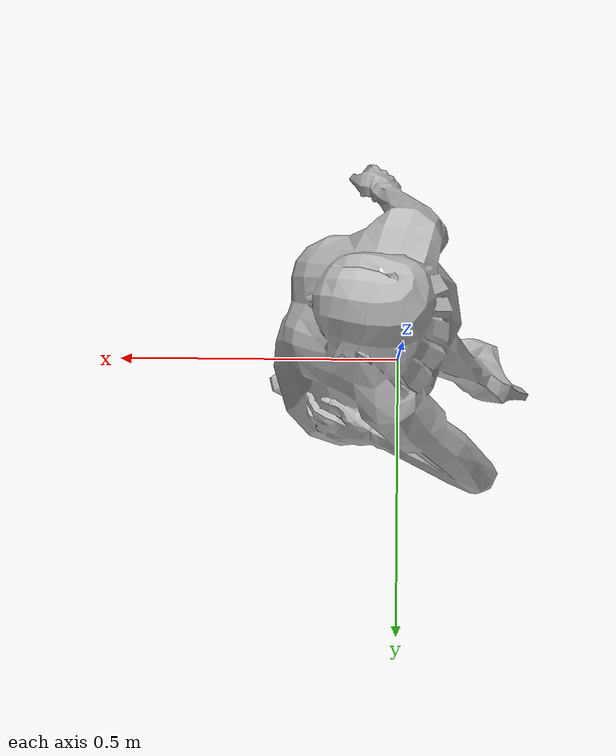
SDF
<?xml version='1.0'?>
    <sdf version='1.4'>
      <model name="pessoa1">
        <static>false</static>
        <link name='chassis'>
          <pose>0 0 .1 0 0 0</pose>
          <collision name='collision'>
            <geometry>
              <box>
                <size>.4 .2 .1</size>
              </box>
            </geometry>
          </collision>

          <visual name='visual'>
			<pose>0 0 0 0 0 1.5</pose>
            <geometry>
              <mesh>
                <uri>model://pessoa1/meshes/models/citizen_female.dae</uri>
				<scale>0.4 0.4 0.4</scale>
              </mesh>
            </geometry>
          </visual>

          <collision name='caster_collision'>
            <pose>-0.15 0 -0.05 0 0 0</pose>
            <geometry>
              <sphere>
              <radius>.05</radius>
            </sphere>
          </geometry>

          <surface>
            <friction>
              <ode>
                <mu>0</mu>
                <mu2>0</mu2>
                <slip1>1.0</slip1>
                <slip2>1.0</slip2>
              </ode>
            </friction>
          </surface>
        </collision>
      </link>
      <link name="left_wheel">
        <pose>0.1 0.13 0.1 0 1.5707 1.5707</pose>
        <collision name="collision">
          <geometry>
            <cylinder>
              <radius>.1</radius>
              <length>.05</length>
            </cylinder>
          </geometry>
        </collision>
      </link>

      <link name="right_wheel">
        <pose>0.1 -0.13 0.1 0 1.5707 1.5707</pose>
        <collision name="collision">
          <geometry>
            <cylinder>
              <radius>.1</radius>
              <length>.05</length>
            </cylinder>
          </geometry>
        </collision>
      </link>
      <joint type="revolute" name="left_wheel_hinge">
        <pose>0 0 -0.03 0 0 0</pose>
        <child>left_wheel</child>
        <parent>chassis</parent>
        <axis>
          <xyz>0 1 0</xyz>
        </axis>
      </joint>

      <joint type="revolute" name="right_wheel_hinge">
        <pose>0 0 0.03 0 0 0</pose>
        <child>right_wheel</child>
        <parent>chassis</parent>
        <axis>
          <xyz>0 1 0</xyz>
        </axis>
      </joint>
</model>
    </sdf>
